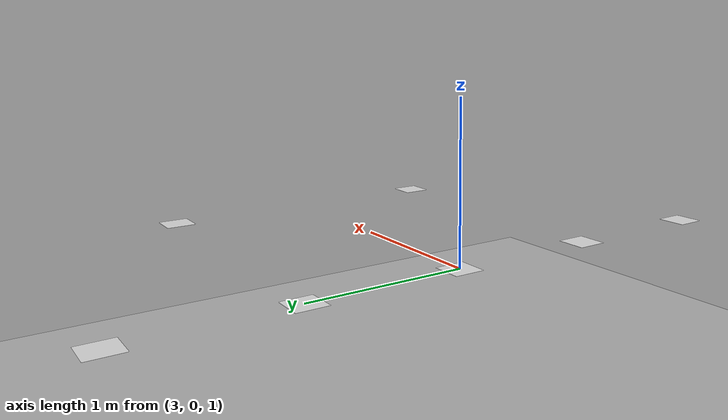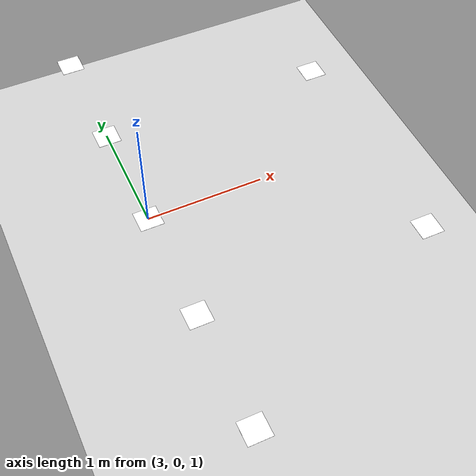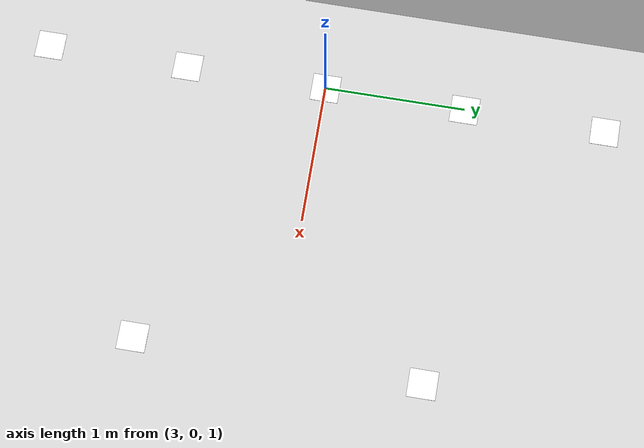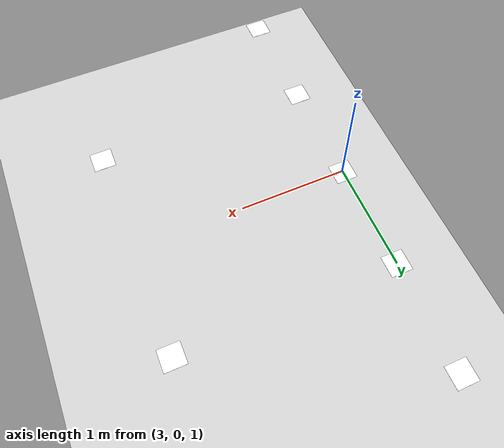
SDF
<?xml version="1.0" ?>
<sdf version="1.9">
  <world name="multy_aruco_test_world">

    <!-- Physics -->
    <physics name="1ms" type="ignored">
      <max_step_size>0.001</max_step_size>
      <real_time_factor>1.0</real_time_factor>
    </physics>

    <!-- Plugins -->
    <plugin filename="gz-sim-physics-system" name="gz::sim::systems::Physics"/>
    <plugin filename="gz-sim-user-commands-system" name="gz::sim::systems::UserCommands"/>
    <plugin filename="gz-sim-scene-broadcaster-system" name="gz::sim::systems::SceneBroadcaster"/>

    <!-- Light -->
    <light name="sun" type="directional">
      <cast_shadows>true</cast_shadows>
      <pose>0 0 10 0 0 0</pose>
      <diffuse>0.8 0.8 0.8 1</diffuse>
      <specular>0.2 0.2 0.2 1</specular>
      <attenuation>
        <range>1000</range>
        <constant>0.9</constant>
        <linear>0.01</linear>
        <quadratic>0.001</quadratic>
      </attenuation>
      <direction>-0.5 0.1 -0.9</direction>
    </light>

    <!-- Ground -->
    <model name="ground_plane">
      <static>true</static>
      <link name="link">
        <collision name="collision">
          <geometry>
            <plane>
              <normal>0 0 1</normal>
              <size>20 20</size>
            </plane>
          </geometry>
        </collision>
        <visual name="visual">
          <geometry>
            <plane>
              <normal>0 0 1</normal>
              <size>20 20</size>
            </plane>
          </geometry>
          <material>
            <ambient>0.8 0.8 0.8 1</ambient>
            <diffuse>0.8 0.8 0.8 1</diffuse>
          </material>
        </visual>
      </link>
    </model>

    <!-- ===== ARUCO MARKERS (WALL SETUP) ===== -->

    <include>
      <uri>model://aruco_0</uri>
      <name>aruco_marker_0</name>
      <pose>3 -2 1 0 0 1.5708</pose>
    </include>

    <include>
      <uri>model://aruco_1</uri>
      <name>aruco_marker_1</name>
      <pose>3 -1 1 0 0 1.5708</pose>
    </include>

    <include>
      <uri>model://aruco_2</uri>
      <name>aruco_marker_2</name>
      <pose>3 0 1 0 0 1.5708</pose>
    </include>

    <include>
      <uri>model://aruco_3</uri>
      <name>aruco_marker_3</name>
      <pose>3 1 1 0 0 1.5708</pose>
    </include>

    <include>
      <uri>model://aruco_10</uri>
      <name>aruco_marker_10</name>
      <pose>3 2 1 0 0 1.5708</pose>
    </include>

    <include>
      <uri>model://aruco_23</uri>
      <name>aruco_marker_23</name>
      <pose>5 -1 1 0 0 1.5708</pose>
    </include>

    <include>
      <uri>model://aruco_42</uri>
      <name>aruco_marker_42</name>
      <pose>5 1 1 0 0 1.5708</pose>
    </include>

  </world>
</sdf>

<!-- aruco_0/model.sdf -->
<sdf version="1.9">
  <model name="aruco_0">
    <static>true</static>

    <link name="link">

      <visual name="visual">
        <geometry>
          <box>
            <size>0.2 0.2 0.001</size>
          </box>
        </geometry>

        <material>
          <ambient>1 1 1 1</ambient>
          <diffuse>1 1 1 1</diffuse>

          <pbr>
            <metal>
              <albedo_map>materials/textures/aruco_0.png</albedo_map>
              <metalness>0.0</metalness>
              <roughness>1.0</roughness>
            </metal>
          </pbr>
        </material>
      </visual>

      <collision name="collision">
        <geometry>
          <box>
            <size>0.2 0.2 0.001</size>
          </box>
        </geometry>
      </collision>

    </link>
  </model>
</sdf>

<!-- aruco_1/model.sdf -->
<sdf version="1.9">
  <model name="aruco_1">
    <static>true</static>

    <link name="link">

      <visual name="visual">
        <geometry>
          <box>
            <size>0.2 0.2 0.001</size>
          </box>
        </geometry>

        <material>
          <ambient>1 1 1 1</ambient>
          <diffuse>1 1 1 1</diffuse>

          <pbr>
            <metal>
              <albedo_map>materials/textures/aruco_1.png</albedo_map>
              <metalness>0.0</metalness>
              <roughness>1.0</roughness>
            </metal>
          </pbr>
        </material>
      </visual>

      <collision name="collision">
        <geometry>
          <box>
            <size>0.2 0.2 0.001</size>
          </box>
        </geometry>
      </collision>

    </link>
  </model>
</sdf>

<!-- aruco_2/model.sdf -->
<sdf version="1.9">
  <model name="aruco_2">
    <static>true</static>

    <link name="link">

      <visual name="visual">
        <geometry>
          <box>
            <size>0.2 0.2 0.001</size>
          </box>
        </geometry>

        <material>
          <ambient>1 1 1 1</ambient>
          <diffuse>1 1 1 1</diffuse>

          <pbr>
            <metal>
              <albedo_map>materials/textures/aruco_2.png</albedo_map>
              <metalness>0.0</metalness>
              <roughness>1.0</roughness>
            </metal>
          </pbr>
        </material>
      </visual>

      <collision name="collision">
        <geometry>
          <box>
            <size>0.2 0.2 0.001</size>
          </box>
        </geometry>
      </collision>

    </link>
  </model>
</sdf>

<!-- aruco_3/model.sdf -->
<sdf version="1.9">
  <model name="aruco_3">
    <static>true</static>

    <link name="link">

      <visual name="visual">
        <geometry>
          <box>
            <size>0.2 0.2 0.001</size>
          </box>
        </geometry>

        <material>
          <ambient>1 1 1 1</ambient>
          <diffuse>1 1 1 1</diffuse>

          <pbr>
            <metal>
              <albedo_map>materials/textures/aruco_3.png</albedo_map>
              <metalness>0.0</metalness>
              <roughness>1.0</roughness>
            </metal>
          </pbr>
        </material>
      </visual>

      <collision name="collision">
        <geometry>
          <box>
            <size>0.2 0.2 0.001</size>
          </box>
        </geometry>
      </collision>

    </link>
  </model>
</sdf>

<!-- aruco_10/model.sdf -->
<sdf version="1.9">
  <model name="aruco_10">
    <static>true</static>

    <link name="link">

      <visual name="visual">
        <geometry>
          <box>
            <size>0.2 0.2 0.001</size>
          </box>
        </geometry>

        <material>
          <ambient>1 1 1 1</ambient>
          <diffuse>1 1 1 1</diffuse>

          <pbr>
            <metal>
              <albedo_map>materials/textures/aruco_10.png</albedo_map>
              <metalness>0.0</metalness>
              <roughness>1.0</roughness>
            </metal>
          </pbr>
        </material>
      </visual>

      <collision name="collision">
        <geometry>
          <box>
            <size>0.2 0.2 0.001</size>
          </box>
        </geometry>
      </collision>

    </link>
  </model>
</sdf>

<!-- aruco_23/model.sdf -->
<sdf version="1.9">
  <model name="aruco_23">
    <static>true</static>

    <link name="link">

      <visual name="visual">
        <geometry>
          <box>
            <size>0.2 0.2 0.001</size>
          </box>
        </geometry>

        <material>
          <ambient>1 1 1 1</ambient>
          <diffuse>1 1 1 1</diffuse>

          <pbr>
            <metal>
              <albedo_map>materials/textures/aruco_23.png</albedo_map>
              <metalness>0.0</metalness>
              <roughness>1.0</roughness>
            </metal>
          </pbr>
        </material>
      </visual>

      <collision name="collision">
        <geometry>
          <box>
            <size>0.2 0.2 0.001</size>
          </box>
        </geometry>
      </collision>

    </link>
  </model>
</sdf>

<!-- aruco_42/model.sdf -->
<sdf version="1.9">
  <model name="aruco_42">
    <static>true</static>

    <link name="link">

      <visual name="visual">
        <geometry>
          <box>
            <size>0.2 0.2 0.001</size>
          </box>
        </geometry>

        <material>
          <ambient>1 1 1 1</ambient>
          <diffuse>1 1 1 1</diffuse>

          <pbr>
            <metal>
              <albedo_map>materials/textures/aruco_42.png</albedo_map>
              <metalness>0.0</metalness>
              <roughness>1.0</roughness>
            </metal>
          </pbr>
        </material>
      </visual>

      <collision name="collision">
        <geometry>
          <box>
            <size>0.2 0.2 0.001</size>
          </box>
        </geometry>
      </collision>

    </link>
  </model>
</sdf>
